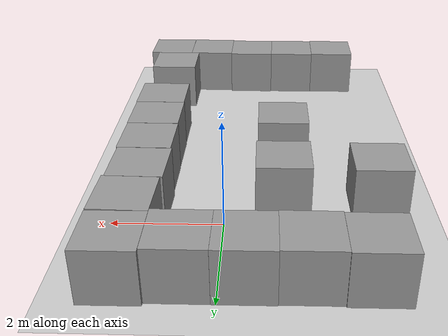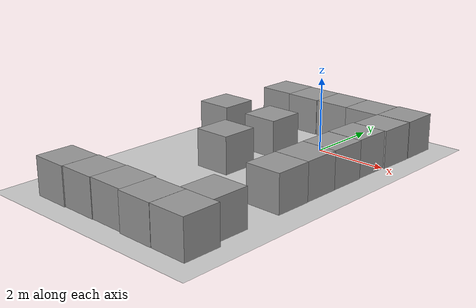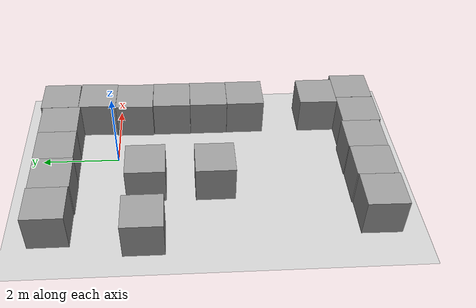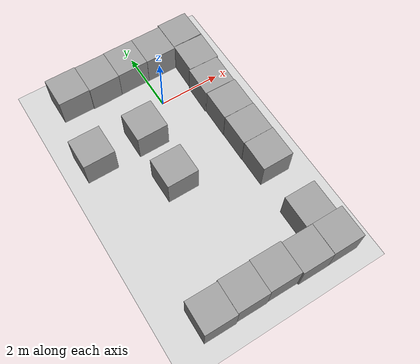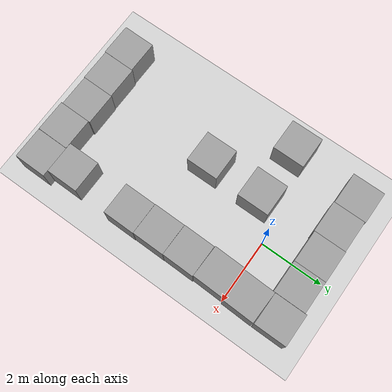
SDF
<sdf version="1.6">
 <world name="default">
  <model name="ground_plane">
   <static>1</static>
   <link name="link">
    <collision name="collision">
     <geometry><plane><normal>0 0 1</normal><size>100 100</size></plane></geometry>
     <surface><friction><ode><mu>100</mu><mu2>50</mu2></ode></friction></surface>
    </collision>
    <visual name="visual">
     <cast_shadows>0</cast_shadows>
     <geometry><plane><normal>0 0 1</normal><size>100 100</size></plane></geometry>
     <material>
      <script><uri>file://media/materials/scripts/gazebo.material</uri><name>Gazebo/Grey</name></script>
     </material>
    </visual>
   </link>
  </model>
  <model name="unit_box_0_10">
   <pose>-0.421887 1.49598 0.499995 -1e-05 -0 0.000849</pose>
   <link name="link">
    <inertial>
     <mass>1</mass>
     <inertia>
      <ixx>0.166667</ixx>
      <ixy>0</ixy>
      <ixz>0</ixz>
      <iyy>0.166667</iyy>
      <iyz>0</iyz>
      <izz>0.166667</izz>
     </inertia>
    </inertial>
    <collision name="collision"><geometry><box><size>1 1 1</size></box></geometry></collision>
    <visual name="visual">
     <geometry><box><size>1 1 1</size></box></geometry>
     <material>
      <script><name>Gazebo/Grey</name><uri>file://media/materials/scripts/gazebo.material</uri></script>
     </material>
    </visual>
   </link>
  </model>
  <model name="unit_box_0_11">
   <pose>-1.42188 1.48094 0.499995 0 1e-05 0.000861</pose>
   <link name="link">
    <inertial>
     <mass>1</mass>
     <inertia>
      <ixx>0.166667</ixx>
      <ixy>0</ixy>
      <ixz>0</ixz>
      <iyy>0.166667</iyy>
      <iyz>0</iyz>
      <izz>0.166667</izz>
     </inertia>
    </inertial>
    <collision name="collision"><geometry><box><size>1 1 1</size></box></geometry></collision>
    <visual name="visual">
     <geometry><box><size>1 1 1</size></box></geometry>
     <material>
      <script><name>Gazebo/Grey</name><uri>file://media/materials/scripts/gazebo.material</uri></script>
     </material>
    </visual>
   </link>
  </model>
  <model name="unit_box_0_12">
   <pose>0.578472 1.49486 0.499995 0 -1e-05 0.000904</pose>
   <link name="link">
    <inertial>
     <mass>1</mass>
     <inertia>
      <ixx>0.166667</ixx>
      <ixy>0</ixy>
      <ixz>0</ixz>
      <iyy>0.166667</iyy>
      <iyz>0</iyz>
      <izz>0.166667</izz>
     </inertia>
    </inertial>
    <collision name="collision"><geometry><box><size>1 1 1</size></box></geometry></collision>
    <visual name="visual">
     <geometry><box><size>1 1 1</size></box></geometry>
     <material>
      <script><name>Gazebo/Grey</name><uri>file://media/materials/scripts/gazebo.material</uri></script>
     </material>
    </visual>
   </link>
  </model>
  <model name="unit_box_0_13">
   <pose>1.58058 1.55397 0.499995 -0 -1e-05 7.7e-05</pose>
   <link name="link">
    <inertial>
     <mass>1</mass>
     <inertia>
      <ixx>0.166667</ixx>
      <ixy>0</ixy>
      <ixz>0</ixz>
      <iyy>0.166667</iyy>
      <iyz>0</iyz>
      <izz>0.166667</izz>
     </inertia>
    </inertial>
    <collision name="collision"><geometry><box><size>1 1 1</size></box></geometry></collision>
    <visual name="visual">
     <geometry><box><size>1 1 1</size></box></geometry>
     <material>
      <script><name>Gazebo/Grey</name><uri>file://media/materials/scripts/gazebo.material</uri></script>
     </material>
    </visual>
   </link>
  </model>
  <model name="unit_box_0_14">
   <pose>1.56773 0.539841 0.499995 -0 1e-05 -0.028566</pose>
   <link name="link">
    <inertial>
     <mass>1</mass>
     <inertia>
      <ixx>0.166667</ixx>
      <ixy>0</ixy>
      <ixz>0</ixz>
      <iyy>0.166667</iyy>
      <iyz>0</iyz>
      <izz>0.166667</izz>
     </inertia>
    </inertial>
    <collision name="collision"><geometry><box><size>1 1 1</size></box></geometry></collision>
    <visual name="visual">
     <geometry><box><size>1 1 1</size></box></geometry>
     <material>
      <script><name>Gazebo/Grey</name><uri>file://media/materials/scripts/gazebo.material</uri></script>
     </material>
    </visual>
   </link>
  </model>
  <model name="unit_box_0_15">
   <pose>1.5008 -0.460718 0.499995 -1e-05 -0 -0.024448</pose>
   <link name="link">
    <inertial>
     <mass>1</mass>
     <inertia>
      <ixx>0.166667</ixx>
      <ixy>0</ixy>
      <ixz>0</ixz>
      <iyy>0.166667</iyy>
      <iyz>0</iyz>
      <izz>0.166667</izz>
     </inertia>
    </inertial>
    <collision name="collision"><geometry><box><size>1 1 1</size></box></geometry></collision>
    <visual name="visual">
     <geometry><box><size>1 1 1</size></box></geometry>
     <material>
      <script><name>Gazebo/Grey</name><uri>file://media/materials/scripts/gazebo.material</uri></script>
     </material>
    </visual>
   </link>
  </model>
  <model name="unit_box_0_16">
   <pose>1.50783 -1.46627 0.499995 1e-05 -0 -0.013705</pose>
   <link name="link">
    <inertial>
     <mass>1</mass>
     <inertia>
      <ixx>0.166667</ixx>
      <ixy>0</ixy>
      <ixz>0</ixz>
      <iyy>0.166667</iyy>
      <iyz>0</iyz>
      <izz>0.166667</izz>
     </inertia>
    </inertial>
    <collision name="collision"><geometry><box><size>1 1 1</size></box></geometry></collision>
    <visual name="visual">
     <geometry><box><size>1 1 1</size></box></geometry>
     <material>
      <script><name>Gazebo/Grey</name><uri>file://media/materials/scripts/gazebo.material</uri></script>
     </material>
    </visual>
   </link>
  </model>
  <model name="unit_box_0_17">
   <pose>1.50395 -2.46873 0.499995 -1e-05 -0 -0.008768</pose>
   <link name="link">
    <inertial>
     <mass>1</mass>
     <inertia>
      <ixx>0.166667</ixx>
      <ixy>0</ixy>
      <ixz>0</ixz>
      <iyy>0.166667</iyy>
      <iyz>0</iyz>
      <izz>0.166667</izz>
     </inertia>
    </inertial>
    <collision name="collision"><geometry><box><size>1 1 1</size></box></geometry></collision>
    <visual name="visual">
     <geometry><box><size>1 1 1</size></box></geometry>
     <material>
      <script><name>Gazebo/Grey</name><uri>file://media/materials/scripts/gazebo.material</uri></script>
     </material>
    </visual>
   </link>
  </model>
  <model name="unit_box_0_18">
   <pose>1.50599 -3.46985 0.499995 1e-05 -0 -0.006664</pose>
   <link name="link">
    <inertial>
     <mass>1</mass>
     <inertia>
      <ixx>0.166667</ixx>
      <ixy>0</ixy>
      <ixz>0</ixz>
      <iyy>0.166667</iyy>
      <iyz>0</iyz>
      <izz>0.166667</izz>
     </inertia>
    </inertial>
    <collision name="collision"><geometry><box><size>1 1 1</size></box></geometry></collision>
    <visual name="visual">
     <geometry><box><size>1 1 1</size></box></geometry>
     <material>
      <script><name>Gazebo/Grey</name><uri>file://media/materials/scripts/gazebo.material</uri></script>
     </material>
    </visual>
   </link>
  </model>
  <model name="unit_box_0_30">
   <pose>1.48426 -5.46985 0.499995 -1e-05 -0 -0.006967</pose>
   <link name="link">
    <inertial>
     <mass>1</mass>
     <inertia>
      <ixx>0.166667</ixx>
      <ixy>0</ixy>
      <ixz>0</ixz>
      <iyy>0.166667</iyy>
      <iyz>0</iyz>
      <izz>0.166667</izz>
     </inertia>
    </inertial>
    <collision name="collision"><geometry><box><size>1 1 1</size></box></geometry></collision>
    <visual name="visual">
     <geometry><box><size>1 1 1</size></box></geometry>
     <material>
      <script><name>Gazebo/Grey</name><uri>file://media/materials/scripts/gazebo.material</uri></script>
     </material>
    </visual>
   </link>
  </model>
  <model name="unit_box_0_31">
   <pose>1.66083 -6.47112 0.499995 -0 -1e-05 -0.006969</pose>
   <link name="link">
    <inertial>
     <mass>1</mass>
     <inertia>
      <ixx>0.166667</ixx>
      <ixy>0</ixy>
      <ixz>0</ixz>
      <iyy>0.166667</iyy>
      <iyz>0</iyz>
      <izz>0.166667</izz>
     </inertia>
    </inertial>
    <collision name="collision"><geometry><box><size>1 1 1</size></box></geometry></collision>
    <visual name="visual">
     <geometry><box><size>1 1 1</size></box></geometry>
     <material>
      <script><name>Gazebo/Grey</name><uri>file://media/materials/scripts/gazebo.material</uri></script>
     </material>
    </visual>
   </link>
  </model>
  <model name="unit_box_0_32">
   <pose>0.658484 -6.46631 0.499995 1e-05 0 -0.011692</pose>
   <link name="link">
    <inertial>
     <mass>1</mass>
     <inertia>
      <ixx>0.166667</ixx>
      <ixy>0</ixy>
      <ixz>0</ixz>
      <iyy>0.166667</iyy>
      <iyz>0</iyz>
      <izz>0.166667</izz>
     </inertia>
    </inertial>
    <collision name="collision"><geometry><box><size>1 1 1</size></box></geometry></collision>
    <visual name="visual">
     <geometry><box><size>1 1 1</size></box></geometry>
     <material>
      <script><name>Gazebo/Grey</name><uri>file://media/materials/scripts/gazebo.material</uri></script>
     </material>
    </visual>
   </link>
  </model>
  <model name="unit_box_0_33">
   <pose>-0.340971 -6.41076 0.499995 0 -1e-05 -0.011746</pose>
   <link name="link">
    <inertial>
     <mass>1</mass>
     <inertia>
      <ixx>0.166667</ixx>
      <ixy>0</ixy>
      <ixz>0</ixz>
      <iyy>0.166667</iyy>
      <iyz>0</iyz>
      <izz>0.166667</izz>
     </inertia>
    </inertial>
    <collision name="collision"><geometry><box><size>1 1 1</size></box></geometry></collision>
    <visual name="visual">
     <geometry><box><size>1 1 1</size></box></geometry>
     <material>
      <script><name>Gazebo/Grey</name><uri>file://media/materials/scripts/gazebo.material</uri></script>
     </material>
    </visual>
   </link>
  </model>
  <model name="unit_box_0_34">
   <pose>-1.34112 -6.41668 0.499995 -0 1e-05 -0.011778</pose>
   <link name="link">
    <inertial>
     <mass>1</mass>
     <inertia>
      <ixx>0.166667</ixx>
      <ixy>0</ixy>
      <ixz>0</ixz>
      <iyy>0.166667</iyy>
      <iyz>0</iyz>
      <izz>0.166667</izz>
     </inertia>
    </inertial>
    <collision name="collision"><geometry><box><size>1 1 1</size></box></geometry></collision>
    <visual name="visual">
     <geometry><box><size>1 1 1</size></box></geometry>
     <material>
      <script><name>Gazebo/Grey</name><uri>file://media/materials/scripts/gazebo.material</uri></script>
     </material>
    </visual>
   </link>
  </model>
  <model name="unit_box_0_35">
   <pose>-2.34187 -6.43251 0.499995 0 -1e-05 -0.012736</pose>
   <link name="link">
    <inertial>
     <mass>1</mass>
     <inertia>
      <ixx>0.166667</ixx>
      <ixy>0</ixy>
      <ixz>0</ixz>
      <iyy>0.166667</iyy>
      <iyz>0</iyz>
      <izz>0.166667</izz>
     </inertia>
    </inertial>
    <collision name="collision"><geometry><box><size>1 1 1</size></box></geometry></collision>
    <visual name="visual">
     <geometry><box><size>1 1 1</size></box></geometry>
     <material>
      <script><name>Gazebo/Grey</name><uri>file://media/materials/scripts/gazebo.material</uri></script>
     </material>
    </visual>
   </link>
  </model>
  <model name="unit_box_0_54">
   <pose>-2.42204 1.50422 0.499995 -0 -1e-05 0.000743</pose>
   <link name="link">
    <inertial>
     <mass>1</mass>
     <inertia>
      <ixx>0.166667</ixx>
      <ixy>0</ixy>
      <ixz>0</ixz>
      <iyy>0.166667</iyy>
      <iyz>0</iyz>
      <izz>0.166667</izz>
     </inertia>
    </inertial>
    <collision name="collision"><geometry><box><size>1 1 1</size></box></geometry></collision>
    <visual name="visual">
     <geometry><box><size>1 1 1</size></box></geometry>
     <material>
      <script><name>Gazebo/Grey</name><uri>file://media/materials/scripts/gazebo.material</uri></script>
     </material>
    </visual>
   </link>
  </model>
  <model name="unit_box_0_65">
   <pose>-1.06285 -2.51627 0.499995 0 -1e-05 0</pose>
   <link name="link">
    <inertial>
     <mass>1</mass>
     <inertia>
      <ixx>0.166667</ixx>
      <ixy>0</ixy>
      <ixz>0</ixz>
      <iyy>0.166667</iyy>
      <iyz>0</iyz>
      <izz>0.166667</izz>
     </inertia>
    </inertial>
    <collision name="collision"><geometry><box><size>1 1 1</size></box></geometry></collision>
    <visual name="visual">
     <geometry><box><size>1 1 1</size></box></geometry>
     <material>
      <script><name>Gazebo/Grey</name><uri>file://media/materials/scripts/gazebo.material</uri></script>
     </material>
    </visual>
   </link>
  </model>
  <model name="unit_box_0_66">
   <pose>-1.04079 -0.782532 0.499995 -1e-05 0 0</pose>
   <link name="link">
    <inertial>
     <mass>1</mass>
     <inertia>
      <ixx>0.166667</ixx>
      <ixy>0</ixy>
      <ixz>0</ixz>
      <iyy>0.166667</iyy>
      <iyz>0</iyz>
      <izz>0.166667</izz>
     </inertia>
    </inertial>
    <collision name="collision"><geometry><box><size>1 1 1</size></box></geometry></collision>
    <visual name="visual">
     <geometry><box><size>1 1 1</size></box></geometry>
     <material>
      <script><name>Gazebo/Grey</name><uri>file://media/materials/scripts/gazebo.material</uri></script>
     </material>
    </visual>
   </link>
  </model>
  <model name="unit_box_0_68">
   <pose>-2.76287 -0.746153 0.499995 -1e-05 0 0</pose>
   <link name="link">
    <inertial>
     <mass>1</mass>
     <inertia>
      <ixx>0.166667</ixx>
      <ixy>0</ixy>
      <ixz>0</ixz>
      <iyy>0.166667</iyy>
      <iyz>0</iyz>
      <izz>0.166667</izz>
     </inertia>
    </inertial>
    <collision name="collision"><geometry><box><size>1 1 1</size></box></geometry></collision>
    <visual name="visual">
     <geometry><box><size>1 1 1</size></box></geometry>
     <material>
      <script><name>Gazebo/Grey</name><uri>file://media/materials/scripts/gazebo.material</uri></script>
     </material>
    </visual>
   </link>
  </model>
 </world>
</sdf>
